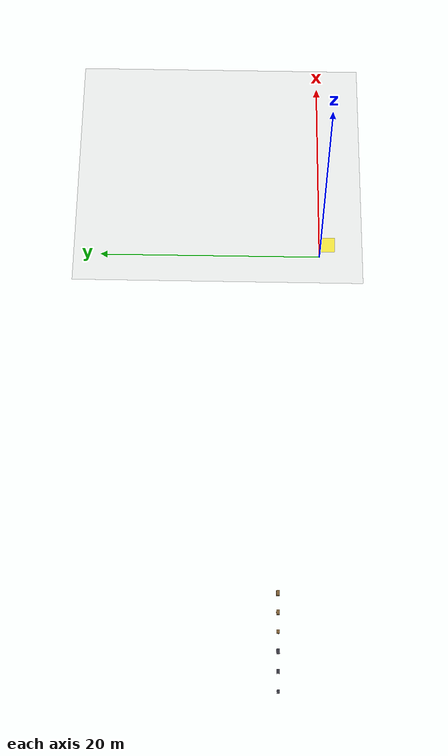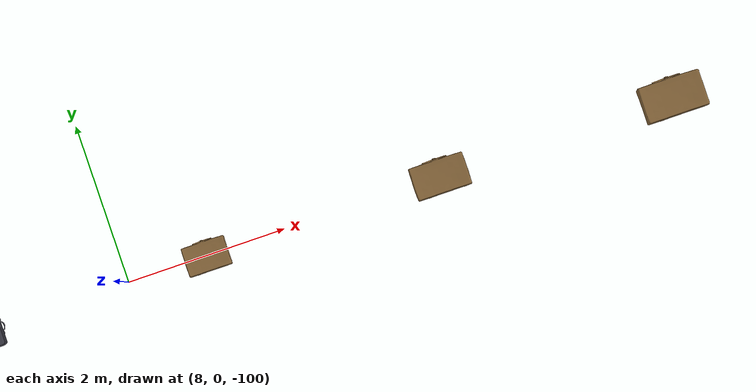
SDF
<?xml version="1.0" ?>
<sdf version="1.8">
  <world name="airport_loading">
    <!-- sun and ground_plane are inlined (not model:// includes) so the world
         is self-contained and does not depend on the gz demo model paths. -->
    <light type="directional" name="sun">
      <cast_shadows>false</cast_shadows>
      <pose>0 0 10 0 0 0</pose>
      <diffuse>0.8 0.8 0.8 1</diffuse>
      <specular>0.2 0.2 0.2 1</specular>
      <attenuation>
        <range>1000</range>
        <constant>0.9</constant>
        <linear>0.01</linear>
        <quadratic>0.001</quadratic>
      </attenuation>
      <direction>-0.5 0.1 -0.9</direction>
    </light>

    <model name="ground_plane">
      <static>true</static>
      <link name="link">
        <collision name="collision">
          <geometry>
            <plane>
              <normal>0 0 1</normal>
              <size>100 100</size>
            </plane>
          </geometry>
          <surface>
            <friction>
              <ode>
                <mu>1</mu>
                <mu2>1</mu2>
              </ode>
            </friction>
          </surface>
        </collision>
        <visual name="visual">
          <geometry>
            <plane>
              <normal>0 0 1</normal>
              <size>100 100</size>
            </plane>
          </geometry>
          <material>
            <ambient>0.8 0.8 0.8 1</ambient>
            <diffuse>0.8 0.8 0.8 1</diffuse>
            <specular>0.8 0.8 0.8 1</specular>
          </material>
        </visual>
      </link>
    </model>

    <!-- Explicit server systems: UserCommands is required for the
         ros_gz_sim create/delete services used by the spawners. -->
    <plugin filename="ignition-gazebo-physics-system"
            name="ignition::gazebo::systems::Physics">
      <dt>0.001</dt>
    </plugin>
    <plugin filename="ignition-gazebo-user-commands-system"
            name="ignition::gazebo::systems::UserCommands"/>
    <plugin filename="ignition-gazebo-scene-broadcaster-system"
            name="ignition::gazebo::systems::SceneBroadcaster"/>
    <!-- Sensors system with GPU rendering: required by the D435 rgbd_camera
         on the robot. Headless rendering goes through EGL on the NVIDIA GPU
         (llvmpipe fails the launch GPU gate). -->
    <plugin filename="ignition-gazebo-sensors-system"
            name="ignition::gazebo::systems::Sensors">
      <render_engine>ogre2</render_engine>
    </plugin>

    <scene>
      <ambient>0.55 0.55 0.60 1</ambient>
      <background>0.65 0.70 0.75 1</background>
      <shadows>false</shadows>
    </scene>

    <physics name="1ms" type="ignored">
      <max_step_size>0.001</max_step_size>
      <real_time_factor>1.0</real_time_factor>
    </physics>

    <!-- Loading zone floor marking (visual aid); same pose as noetic -->
    <model name="loading_zone_marking">
      <static>true</static>
      <link name="link">
        <visual name="zone_visual">
          <pose>1.4 -0.7 0.001 0 0 0</pose>
          <geometry><box><size>1.6 1.4 0.002</size></box></geometry>
          <material>
            <ambient>0.9 0.85 0.2 1</ambient>
            <diffuse>0.95 0.90 0.25 1</diffuse>
          </material>
        </visual>
      </link>
    </model>

    <!-- Preload each pre-scaled suitcase URI for the Ogre GPU cache.
         Static and spaced so mesh collisions do not overlap at z=-100. -->
    <include>
      <uri>model://suitcase_loafbrr_small</uri>
      <name>_preload_suitcase_loafbrr_small</name>
      <static>true</static>
      <pose>0 0 -100 0 0 0</pose>
    </include>
    <include>
      <uri>model://suitcase_loafbrr_medium</uri>
      <name>_preload_suitcase_loafbrr_medium</name>
      <static>true</static>
      <pose>3 0 -100 0 0 0</pose>
    </include>
    <include>
      <uri>model://suitcase_loafbrr_large</uri>
      <name>_preload_suitcase_loafbrr_large</name>
      <static>true</static>
      <pose>6 0 -100 0 0 0</pose>
    </include>
    <include>
      <uri>model://suitcase_vintage_small</uri>
      <name>_preload_suitcase_vintage_small</name>
      <static>true</static>
      <pose>9 0 -100 0 0 0</pose>
    </include>
    <include>
      <uri>model://suitcase_vintage_medium</uri>
      <name>_preload_suitcase_vintage_medium</name>
      <static>true</static>
      <pose>12 0 -100 0 0 0</pose>
    </include>
    <include>
      <uri>model://suitcase_vintage_large</uri>
      <name>_preload_suitcase_vintage_large</name>
      <static>true</static>
      <pose>15 0 -100 0 0 0</pose>
    </include>
  </world>
</sdf>

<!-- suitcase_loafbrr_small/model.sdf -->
<sdf version="1.6">
  <!-- Suitcase suitcase_loafbrr visual+collision 0.550 x 0.400 x 0.250 m, 8.00 kg -->
  <model name="suitcase_loafbrr_small">
    <link name="suitcase_link">
      <inertial>
        <mass>8.0000</mass>
        <inertia>
          <ixx>0.148333</ixx><ixy>0</ixy><ixz>0</ixz>
          <iyy>0.243333</iyy><iyz>0</iyz>
          <izz>0.308333</izz>
        </inertia>
      </inertial>
      <visual name="suitcase_loafbrr_small_visual">
        <geometry>
          <mesh>
            <uri>model://suitcase_loafbrr_small/meshes/suitcase.stl</uri>
            <scale>1.000000 1.000000 1.000000</scale>
          </mesh>
        </geometry>
        <material>
          <ambient>0.12 0.12 0.15 1</ambient>
          <diffuse>0.20 0.20 0.24 1</diffuse>
        </material>
      </visual>
      <collision name="body_collision">
        <geometry>
          <mesh>
            <uri>model://suitcase_loafbrr_small/meshes/suitcase.stl</uri>
            <scale>1.000000 1.000000 1.000000</scale>
          </mesh>
        </geometry>
        <surface>
          <friction><ode><mu>0.6</mu><mu2>0.6</mu2></ode></friction>
        </surface>
      </collision>
    </link>
  </model>
</sdf>

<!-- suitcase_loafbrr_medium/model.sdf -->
<sdf version="1.6">
  <!-- Suitcase suitcase_loafbrr visual+collision 0.700 x 0.450 x 0.280 m, 15.00 kg -->
  <model name="suitcase_loafbrr_medium">
    <link name="suitcase_link">
      <inertial>
        <mass>15.0000</mass>
        <inertia>
          <ixx>0.351125</ixx><ixy>0</ixy><ixz>0</ixz>
          <iyy>0.710500</iyy><iyz>0</iyz>
          <izz>0.865625</izz>
        </inertia>
      </inertial>
      <visual name="suitcase_loafbrr_medium_visual">
        <geometry>
          <mesh>
            <uri>model://suitcase_loafbrr_medium/meshes/suitcase.stl</uri>
            <scale>1.000000 1.000000 1.000000</scale>
          </mesh>
        </geometry>
        <material>
          <ambient>0.12 0.12 0.15 1</ambient>
          <diffuse>0.20 0.20 0.24 1</diffuse>
        </material>
      </visual>
      <collision name="body_collision">
        <geometry>
          <mesh>
            <uri>model://suitcase_loafbrr_medium/meshes/suitcase.stl</uri>
            <scale>1.000000 1.000000 1.000000</scale>
          </mesh>
        </geometry>
        <surface>
          <friction><ode><mu>0.6</mu><mu2>0.6</mu2></ode></friction>
        </surface>
      </collision>
    </link>
  </model>
</sdf>

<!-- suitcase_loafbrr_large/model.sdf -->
<sdf version="1.6">
  <!-- Suitcase suitcase_loafbrr visual+collision 0.800 x 0.500 x 0.320 m, 23.00 kg -->
  <model name="suitcase_loafbrr_large">
    <link name="suitcase_link">
      <inertial>
        <mass>23.0000</mass>
        <inertia>
          <ixx>0.675433</ixx><ixy>0</ixy><ixz>0</ixz>
          <iyy>1.422933</iyy><iyz>0</iyz>
          <izz>1.705833</izz>
        </inertia>
      </inertial>
      <visual name="suitcase_loafbrr_large_visual">
        <geometry>
          <mesh>
            <uri>model://suitcase_loafbrr_large/meshes/suitcase.stl</uri>
            <scale>1.000000 1.000000 1.000000</scale>
          </mesh>
        </geometry>
        <material>
          <ambient>0.12 0.12 0.15 1</ambient>
          <diffuse>0.20 0.20 0.24 1</diffuse>
        </material>
      </visual>
      <collision name="body_collision">
        <geometry>
          <mesh>
            <uri>model://suitcase_loafbrr_large/meshes/suitcase.stl</uri>
            <scale>1.000000 1.000000 1.000000</scale>
          </mesh>
        </geometry>
        <surface>
          <friction><ode><mu>0.6</mu><mu2>0.6</mu2></ode></friction>
        </surface>
      </collision>
    </link>
  </model>
</sdf>

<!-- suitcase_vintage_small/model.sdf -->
<sdf version="1.6">
  <!-- Suitcase suitcase_vintage visual+collision 0.550 x 0.400 x 0.250 m, 8.00 kg -->
  <model name="suitcase_vintage_small">
    <link name="suitcase_link">
      <inertial>
        <mass>8.0000</mass>
        <inertia>
          <ixx>0.148333</ixx><ixy>0</ixy><ixz>0</ixz>
          <iyy>0.243333</iyy><iyz>0</iyz>
          <izz>0.308333</izz>
        </inertia>
      </inertial>
      <visual name="suitcase_vintage_small_visual">
        <geometry>
          <mesh>
            <uri>model://suitcase_vintage_small/meshes/suitcase.stl</uri>
            <scale>1.000000 1.000000 1.000000</scale>
          </mesh>
        </geometry>
        <material>
          <ambient>0.32 0.24 0.14 1</ambient>
          <diffuse>0.48 0.36 0.20 1</diffuse>
        </material>
      </visual>
      <collision name="body_collision">
        <geometry>
          <mesh>
            <uri>model://suitcase_vintage_small/meshes/suitcase.stl</uri>
            <scale>1.000000 1.000000 1.000000</scale>
          </mesh>
        </geometry>
        <surface>
          <friction><ode><mu>0.6</mu><mu2>0.6</mu2></ode></friction>
        </surface>
      </collision>
    </link>
  </model>
</sdf>

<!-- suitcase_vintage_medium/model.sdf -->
<sdf version="1.6">
  <!-- Suitcase suitcase_vintage visual+collision 0.700 x 0.450 x 0.280 m, 15.00 kg -->
  <model name="suitcase_vintage_medium">
    <link name="suitcase_link">
      <inertial>
        <mass>15.0000</mass>
        <inertia>
          <ixx>0.351125</ixx><ixy>0</ixy><ixz>0</ixz>
          <iyy>0.710500</iyy><iyz>0</iyz>
          <izz>0.865625</izz>
        </inertia>
      </inertial>
      <visual name="suitcase_vintage_medium_visual">
        <geometry>
          <mesh>
            <uri>model://suitcase_vintage_medium/meshes/suitcase.stl</uri>
            <scale>1.000000 1.000000 1.000000</scale>
          </mesh>
        </geometry>
        <material>
          <ambient>0.32 0.24 0.14 1</ambient>
          <diffuse>0.48 0.36 0.20 1</diffuse>
        </material>
      </visual>
      <collision name="body_collision">
        <geometry>
          <mesh>
            <uri>model://suitcase_vintage_medium/meshes/suitcase.stl</uri>
            <scale>1.000000 1.000000 1.000000</scale>
          </mesh>
        </geometry>
        <surface>
          <friction><ode><mu>0.6</mu><mu2>0.6</mu2></ode></friction>
        </surface>
      </collision>
    </link>
  </model>
</sdf>

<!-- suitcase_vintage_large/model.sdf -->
<sdf version="1.6">
  <!-- Suitcase suitcase_vintage visual+collision 0.800 x 0.500 x 0.320 m, 23.00 kg -->
  <model name="suitcase_vintage_large">
    <link name="suitcase_link">
      <inertial>
        <mass>23.0000</mass>
        <inertia>
          <ixx>0.675433</ixx><ixy>0</ixy><ixz>0</ixz>
          <iyy>1.422933</iyy><iyz>0</iyz>
          <izz>1.705833</izz>
        </inertia>
      </inertial>
      <visual name="suitcase_vintage_large_visual">
        <geometry>
          <mesh>
            <uri>model://suitcase_vintage_large/meshes/suitcase.stl</uri>
            <scale>1.000000 1.000000 1.000000</scale>
          </mesh>
        </geometry>
        <material>
          <ambient>0.32 0.24 0.14 1</ambient>
          <diffuse>0.48 0.36 0.20 1</diffuse>
        </material>
      </visual>
      <collision name="body_collision">
        <geometry>
          <mesh>
            <uri>model://suitcase_vintage_large/meshes/suitcase.stl</uri>
            <scale>1.000000 1.000000 1.000000</scale>
          </mesh>
        </geometry>
        <surface>
          <friction><ode><mu>0.6</mu><mu2>0.6</mu2></ode></friction>
        </surface>
      </collision>
    </link>
  </model>
</sdf>
